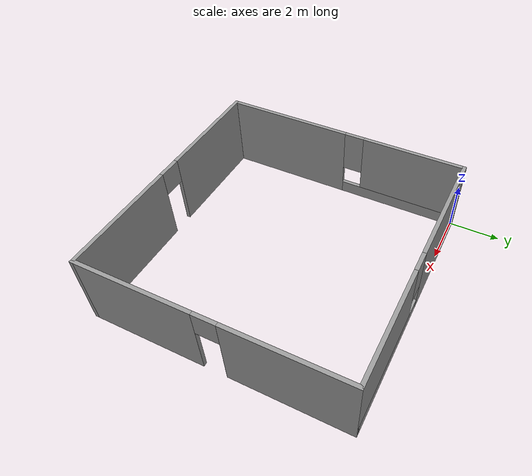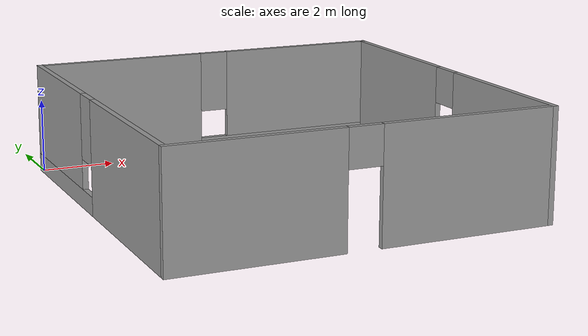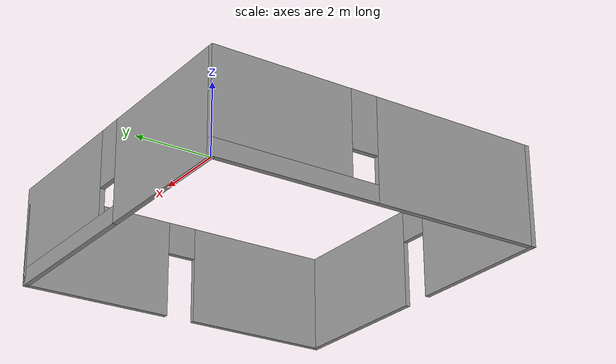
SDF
<?xml version='1.0'?>
<sdf version='1.6'>
  <model name='Room'>
    <pose frame=''>5 -5 0 0 -0 0</pose>
    <link name='Wall_0'>
      <pose frame=''>0 5 0 0 -0 0</pose>
      <visual name='Wall_0_Visual_0'>
        <pose frame=''>-2.67701 0 1.5 0 -0 0</pose>
        <geometry>
          <box>
            <size>4.79598 0.15 3</size>
          </box>
        </geometry>
        <material>
          <script>
            <uri>file://media/materials/scripts/gazebo.material</uri>
            <name>Gazebo/Grey</name>
          </script>
          <ambient>1 1 1 1</ambient>
        </material>
        <meta>
          <layer>0</layer>
        </meta>
      </visual>
      <collision name='Wall_0_Collision_0'>
        <geometry>
          <box>
            <size>4.79598 0.15 3</size>
          </box>
        </geometry>
        <pose frame=''>-2.67701 0 1.5 0 -0 0</pose>
      </collision>
      <visual name='Wall_0_Visual_1'>
        <pose frame=''>2.39799 0 0.25 0 -0 0</pose>
        <geometry>
          <box>
            <size>5.35402 0.15 0.5</size>
          </box>
        </geometry>
        <material>
          <script>
            <uri>file://media/materials/scripts/gazebo.material</uri>
            <name>Gazebo/Grey</name>
          </script>
          <ambient>1 1 1 1</ambient>
        </material>
        <meta>
          <layer>0</layer>
        </meta>
      </visual>
      <collision name='Wall_0_Collision_1'>
        <geometry>
          <box>
            <size>5.35402 0.15 0.5</size>
          </box>
        </geometry>
        <pose frame=''>2.39799 0 0.25 0 -0 0</pose>
      </collision>
      <visual name='Wall_0_Visual_2'>
        <pose frame=''>2.79799 0 1.75 0 -0 0</pose>
        <geometry>
          <box>
            <size>4.55402 0.15 2.5</size>
          </box>
        </geometry>
        <material>
          <script>
            <uri>file://media/materials/scripts/gazebo.material</uri>
            <name>Gazebo/Grey</name>
          </script>
          <ambient>1 1 1 1</ambient>
        </material>
        <meta>
          <layer>0</layer>
        </meta>
      </visual>
      <collision name='Wall_0_Collision_2'>
        <geometry>
          <box>
            <size>4.55402 0.15 2.5</size>
          </box>
        </geometry>
        <pose frame=''>2.79799 0 1.75 0 -0 0</pose>
      </collision>
      <visual name='Wall_0_Visual_3'>
        <pose frame=''>0.120979 0 2.15 0 -0 0</pose>
        <geometry>
          <box>
            <size>0.8 0.15 1.7</size>
          </box>
        </geometry>
        <material>
          <script>
            <uri>file://media/materials/scripts/gazebo.material</uri>
            <name>Gazebo/Grey</name>
          </script>
          <ambient>1 1 1 1</ambient>
        </material>
        <meta>
          <layer>0</layer>
        </meta>
      </visual>
      <collision name='Wall_0_Collision_3'>
        <geometry>
          <box>
            <size>0.8 0.15 1.7</size>
          </box>
        </geometry>
        <pose frame=''>0.120979 0 2.15 0 -0 0</pose>
      </collision>
    </link>
    <link name='Wall_1'>
      <collision name='Wall_1_Collision'>
        <geometry>
          <box>
            <size>0.15 0.15 2.5</size>
          </box>
        </geometry>
        <pose frame=''>0 0 1.25 0 -0 0</pose>
      </collision>
      <visual name='Wall_1_Visual'>
        <pose frame=''>0 0 1.25 0 -0 0</pose>
        <geometry>
          <box>
            <size>0.15 0.15 2.5</size>
          </box>
        </geometry>
        <material>
          <script>
            <uri>file://media/materials/scripts/gazebo.material</uri>
            <name>Gazebo/Grey</name>
          </script>
          <ambient>1 1 1 1</ambient>
        </material>
        <meta>
          <layer>0</layer>
        </meta>
      </visual>
      <pose frame=''>5 5 0 0 -0 0</pose>
    </link>
    <link name='Wall_11'>
      <pose frame=''>0 -5 0 0 -0 0</pose>
      <visual name='Wall_11_Visual_0'>
        <pose frame=''>-2.82514 0 1.5 0 -0 0</pose>
        <geometry>
          <box>
            <size>4.49973 0.15 3</size>
          </box>
        </geometry>
        <material>
          <script>
            <uri>file://media/materials/scripts/gazebo.material</uri>
            <name>Gazebo/Grey</name>
          </script>
          <ambient>1 1 1 1</ambient>
        </material>
        <meta>
          <layer>0</layer>
        </meta>
      </visual>
      <collision name='Wall_11_Collision_0'>
        <geometry>
          <box>
            <size>4.49973 0.15 3</size>
          </box>
        </geometry>
        <pose frame=''>-2.82514 0 1.5 0 -0 0</pose>
      </collision>
      <visual name='Wall_11_Visual_1'>
        <pose frame=''>2.69986 0 1.5 0 -0 0</pose>
        <geometry>
          <box>
            <size>4.75027 0.15 3</size>
          </box>
        </geometry>
        <material>
          <script>
            <uri>file://media/materials/scripts/gazebo.material</uri>
            <name>Gazebo/Grey</name>
          </script>
          <ambient>1 1 1 1</ambient>
        </material>
        <meta>
          <layer>0</layer>
        </meta>
      </visual>
      <collision name='Wall_11_Collision_1'>
        <geometry>
          <box>
            <size>4.75027 0.15 3</size>
          </box>
        </geometry>
        <pose frame=''>2.69986 0 1.5 0 -0 0</pose>
      </collision>
      <visual name='Wall_11_Visual_2'>
        <pose frame=''>-0.125272 0 2.5 0 -0 0</pose>
        <geometry>
          <box>
            <size>0.9 0.15 1</size>
          </box>
        </geometry>
        <material>
          <script>
            <uri>file://media/materials/scripts/gazebo.material</uri>
            <name>Gazebo/Grey</name>
          </script>
          <ambient>1 1 1 1</ambient>
        </material>
        <meta>
          <layer>0</layer>
        </meta>
      </visual>
      <collision name='Wall_11_Collision_2'>
        <geometry>
          <box>
            <size>0.9 0.15 1</size>
          </box>
        </geometry>
        <pose frame=''>-0.125272 0 2.5 0 -0 0</pose>
      </collision>
    </link>
    <link name='Wall_4'>
      <pose frame=''>-5 0 0 0 -0 1.5708</pose>
      <visual name='Wall_4_Visual_0'>
        <pose frame=''>-2.47108 0 1.5 0 -0 0</pose>
        <geometry>
          <box>
            <size>5.20783 0.15 3</size>
          </box>
        </geometry>
        <material>
          <script>
            <uri>file://media/materials/scripts/gazebo.material</uri>
            <name>Gazebo/Grey</name>
          </script>
          <ambient>1 1 1 1</ambient>
        </material>
        <meta>
          <layer>0</layer>
        </meta>
      </visual>
      <collision name='Wall_4_Collision_0'>
        <geometry>
          <box>
            <size>5.20783 0.15 3</size>
          </box>
        </geometry>
        <pose frame=''>-2.47108 0 1.5 0 -0 0</pose>
      </collision>
      <visual name='Wall_4_Visual_1'>
        <pose frame=''>2.60392 0 0.25 0 -0 0</pose>
        <geometry>
          <box>
            <size>4.94217 0.15 0.5</size>
          </box>
        </geometry>
        <material>
          <script>
            <uri>file://media/materials/scripts/gazebo.material</uri>
            <name>Gazebo/Grey</name>
          </script>
          <ambient>1 1 1 1</ambient>
        </material>
        <meta>
          <layer>0</layer>
        </meta>
      </visual>
      <collision name='Wall_4_Collision_1'>
        <geometry>
          <box>
            <size>4.94217 0.15 0.5</size>
          </box>
        </geometry>
        <pose frame=''>2.60392 0 0.25 0 -0 0</pose>
      </collision>
      <visual name='Wall_4_Visual_2'>
        <pose frame=''>3.00392 0 1.75 0 -0 0</pose>
        <geometry>
          <box>
            <size>4.14217 0.15 2.5</size>
          </box>
        </geometry>
        <material>
          <script>
            <uri>file://media/materials/scripts/gazebo.material</uri>
            <name>Gazebo/Grey</name>
          </script>
          <ambient>1 1 1 1</ambient>
        </material>
        <meta>
          <layer>0</layer>
        </meta>
      </visual>
      <collision name='Wall_4_Collision_2'>
        <geometry>
          <box>
            <size>4.14217 0.15 2.5</size>
          </box>
        </geometry>
        <pose frame=''>3.00392 0 1.75 0 -0 0</pose>
      </collision>
      <visual name='Wall_4_Visual_3'>
        <pose frame=''>0.532831 0 2.15 0 -0 0</pose>
        <geometry>
          <box>
            <size>0.8 0.15 1.7</size>
          </box>
        </geometry>
        <material>
          <script>
            <uri>file://media/materials/scripts/gazebo.material</uri>
            <name>Gazebo/Grey</name>
          </script>
          <ambient>1 1 1 1</ambient>
        </material>
        <meta>
          <layer>0</layer>
        </meta>
      </visual>
      <collision name='Wall_4_Collision_3'>
        <geometry>
          <box>
            <size>0.8 0.15 1.7</size>
          </box>
        </geometry>
        <pose frame=''>0.532831 0 2.15 0 -0 0</pose>
      </collision>
    </link>
    <link name='Wall_9'>
      <pose frame=''>5 0 0 0 0 -1.5708</pose>
      <visual name='Wall_9_Visual_0'>
        <pose frame=''>-2.76507 0 1.5 0 -0 0</pose>
        <geometry>
          <box>
            <size>4.61985 0.15 3</size>
          </box>
        </geometry>
        <material>
          <script>
            <uri>file://media/materials/scripts/gazebo.material</uri>
            <name>Gazebo/Grey</name>
          </script>
          <ambient>1 1 1 1</ambient>
        </material>
        <meta>
          <layer>0</layer>
        </meta>
      </visual>
      <collision name='Wall_9_Collision_0'>
        <geometry>
          <box>
            <size>4.61985 0.15 3</size>
          </box>
        </geometry>
        <pose frame=''>-2.76507 0 1.5 0 -0 0</pose>
      </collision>
      <visual name='Wall_9_Visual_1'>
        <pose frame=''>2.75993 0 1.5 0 -0 0</pose>
        <geometry>
          <box>
            <size>4.63015 0.15 3</size>
          </box>
        </geometry>
        <material>
          <script>
            <uri>file://media/materials/scripts/gazebo.material</uri>
            <name>Gazebo/Grey</name>
          </script>
          <ambient>1 1 1 1</ambient>
        </material>
        <meta>
          <layer>0</layer>
        </meta>
      </visual>
      <collision name='Wall_9_Collision_1'>
        <geometry>
          <box>
            <size>4.63015 0.15 3</size>
          </box>
        </geometry>
        <pose frame=''>2.75993 0 1.5 0 -0 0</pose>
      </collision>
      <visual name='Wall_9_Visual_2'>
        <pose frame=''>-0.005149 0 2.5 0 -0 0</pose>
        <geometry>
          <box>
            <size>0.9 0.15 1</size>
          </box>
        </geometry>
        <material>
          <script>
            <uri>file://media/materials/scripts/gazebo.material</uri>
            <name>Gazebo/Grey</name>
          </script>
          <ambient>1 1 1 1</ambient>
        </material>
        <meta>
          <layer>0</layer>
        </meta>
      </visual>
      <collision name='Wall_9_Collision_2'>
        <geometry>
          <box>
            <size>0.9 0.15 1</size>
          </box>
        </geometry>
        <pose frame=''>-0.005149 0 2.5 0 -0 0</pose>
      </collision>
    </link>
    <static>1</static>
  </model>
</sdf>
